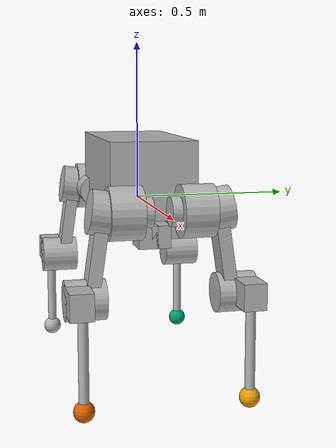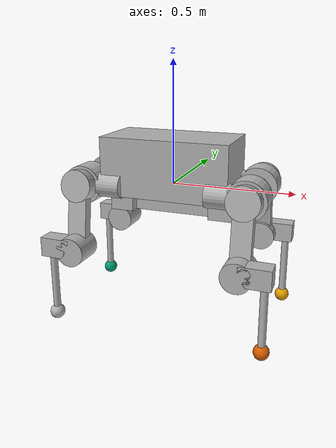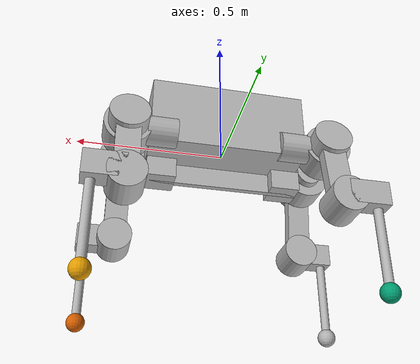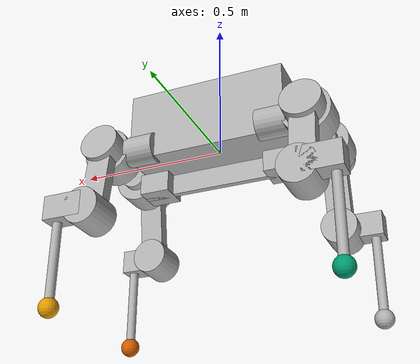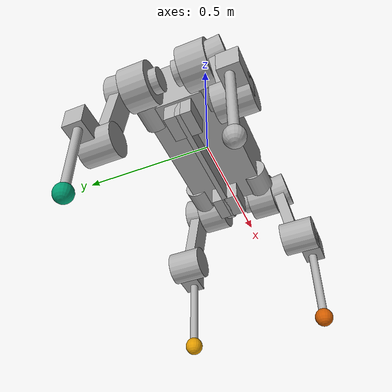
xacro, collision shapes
<?xml version="1.0" encoding="utf-8"?>
<!--   Copyright 2019 ANYbotics, https://www.anybotics.com                               -->
<!-- This file contains the description of the ANYmal B robot. -->
<robot name="anymal" xmlns:xacro="http://www.ros.org/wiki/xacro">

    <!-- This argument allows us to load joint sensors that measure the internal wrenches -->
    <xacro:arg name="load_force_sensors" default="false"/>
    <xacro:arg name="period"             default="0.004"/>
    <xacro:arg name="floating_base_link" default="true"/>
    <xacro:arg name="robot_model"        default="anymal"/>
    <xacro:arg name="robot_name"         default=""/>
    <xacro:arg name="base_name"          default="base_link"/>

    <!-- load generic materials -->
    <xacro:include filename="$(find wolf_description_utils)/urdfs/materials.xacro"/>

    <!-- generic simulator_gazebo plugins for starting mechanism control, ros time -->
    <xacro:include filename="$(find wolf_description_utils)/urdfs/gazebo.urdf.xacro"/>

    <!-- legs transmission and gazebo plugins -->
    <xacro:include filename="$(find wolf_description_utils)/urdfs/leg.transmission.xacro"/>
    <xacro:include filename="$(find wolf_description_utils)/urdfs/leg.gazebo.xacro"/>

    <!-- Material for the visual primitives -->
    <material name="anymal_material">
        <color rgba="0.7 0.7 0.7 1.0"/>
    </material>

    <!-- Base link -->
    <link name="base_link">
        <visual>
            <origin rpy="0 0 0" xyz="0 0 0"/>
            <geometry>
                <mesh filename="package://anymal_description/meshes/anymal_base.dae" scale="0.001 0.001     0.001"/>
            </geometry>
            <material name="anymal_material"/>
        </visual>
        <collision>
            <!-- Main Body -->
            <origin rpy="0 0 0" xyz="0 0 0.08"/>
            <geometry>
                <box size="0.531 0.27 0.24"/>
            </geometry>
        </collision>
        <collision>
            <!-- HAA actuators -->
            <origin rpy="0 1.57079632679 0" xyz="0.227 0.116 0"/>
            <geometry>
                <cylinder length="0.1" radius="0.05"/>
            </geometry>
        </collision>
        <collision>
            <origin rpy="0 1.57079632679 0" xyz="0.227 -0.116 0"/>
            <geometry>
                <cylinder length="0.1" radius="0.05"/>
            </geometry>
        </collision>
        <collision>
            <origin rpy="0 1.57079632679 0" xyz="-0.227 0.116 0"/>
            <geometry>
                <cylinder length="0.1" radius="0.05"/>
            </geometry>
        </collision>
        <collision>
            <origin rpy="0 1.57079632679 0" xyz="-0.227 -0.116 0"/>
            <geometry>
                <cylinder length="0.1" radius="0.05"/>
            </geometry>
        </collision>
        <collision>
            <!-- Belly plate front bump -->
            <origin rpy="0 0 0" xyz="0.2155 0.0 -0.09"/>
            <geometry>
                <box size="0.1 0.1 0.07"/>
            </geometry>
        </collision>
        <collision>
            <!-- Belly plate hind bump-->
            <origin rpy="0 0 0" xyz="-0.2155 0.0 -0.09"/>
            <geometry>
                <box size="0.1 0.1 0.07"/>
            </geometry>
        </collision>
        <collision>
            <!-- Belly plate middle bump-->
            <origin rpy="0 0 0" xyz="0 0 -0.09"/>
            <geometry>
                <box size="0.531 0.02 0.07"/>
            </geometry>
        </collision>
    </link>

    <!-- Floating-base Joint -->
    <xacro:if value="$(arg floating_base_link)">
	    <link name="world"/>
	    <joint name="floating_base_joint" type="floating">
	      <origin rpy="0 0 0" xyz="0 0 0"/>
	      <parent link="world"/>
	      <child link="base_link"/>
	    </joint>
    </xacro:if>
    <joint name="floating_base" type="fixed">
      <origin rpy="0 0 0" xyz="0 0 0"/>
      <parent link="base_link"/>
      <child link="trunk"/>
    </joint>
    <link name="trunk"/>

    <!-- Fixed joint to add dummy inertia link -->
    <joint name="base_to_base_inertia" type="fixed">
        <parent link="trunk"/>
        <child link="base_inertia"/>
        <origin rpy="0 0 0" xyz="0 0 0"/>
    </joint>
    <!-- Dummy inertia link, because KDL cannot have inertia on the base link -->
    <link name="base_inertia">
        <inertial>
            <origin rpy="0 0 0" xyz="-0.001960558279 -0.001413217745 0.050207125344"/>
            <mass value="40.793507758"/>
            <inertia ixx="0.217391101503" ixy="-0.00132873239126" ixz="-0.00228200226173" iyy="0.639432546734" iyz="-0.00138078263145" izz="0.62414077654"/>
        </inertial>
    </link>
    <link name="lf_hip">
        <visual>
            <origin rpy="0 0 0.0" xyz="0 0 0"/>
            <geometry>
                <mesh filename="package://anymal_description/meshes/anymal_hip_l.dae" scale="0.001 0.001     0.001"/>
            </geometry>
            <material name="anymal_material"/>
        </visual>
        <collision>
            <!-- Protector -->
            <origin rpy="1.57079632679 0 0" xyz="0.0635 -0.009 0.0"/>
            <geometry>
                <cylinder length="0.1" radius="0.08"/>
            </geometry>
        </collision>
        <collision>
            <!-- Heatfins -->
            <origin rpy="1.57079632679 0 0" xyz="0.0635 -0.074 0.0"/>
            <geometry>
                <cylinder length="0.03" radius="0.045"/>
            </geometry>
        </collision>
        <inertial>
            <origin rpy="0 0 0" xyz="0.064516258147 -0.003787101702 -0.000152184388"/>
            <mass value="1.42462064"/>
            <inertia ixx="0.00243023349564" ixy="-1.53023971e-05" ixz="-2.1819095354e-05" iyy="0.00230257239103" iyz="2.6473021273e-05" izz="0.0019806759227"/>
        </inertial>
    </link>
    <!-- Hip joint -->
    <joint name="lf_haa_joint" type="revolute">
        <parent link="trunk"/>
        <child link="lf_hip"/>
        <origin xyz="0.277 0.116 0.0"/>
        <axis xyz="1 0 0"/>
        <limit command_effort="40" current="10" effort="80" gear_velocity="10" lower="-9.42" upper="9.42" velocity="15"/>
        <dynamics damping="0.0" friction="0.0"/>
    </joint>
    <link name="lf_upperleg">
        <visual>
            <origin rpy="0 0 0.0" xyz="0 0 0"/>
            <geometry>
                <mesh filename="package://anymal_description/meshes/anymal_thigh_l.dae" scale="0.001 0.001     0.001"/>
            </geometry>
            <material name="anymal_material"/>
        </visual>
        <collision>
            <!-- upperleg with heat fins -->
            <origin rpy="0.145 0 0" xyz="0 0.035 -0.125"/>
            <geometry>
                <box size="0.08 0.04 0.25"/>
            </geometry>
        </collision>
        <collision>
            <!-- KFE actuator -->
            <origin rpy="1.57079632679 0 0" xyz="0.0 0.069 -0.25"/>
            <geometry>
                <cylinder length="0.12" radius="0.06"/>
            </geometry>
        </collision>
        <collision>
            <!-- upper protector -->
            <origin rpy="1.71579632679 0 0" xyz="0 -0.005 0"/>
            <geometry>
                <cylinder length="0.12" radius="0.066"/>
            </geometry>
        </collision>
        <inertial>
            <origin rpy="0 0 0" xyz="-0.003897968082 0.054226618537 -0.214583373795"/>
            <mass value="2.3"/>
            <inertia ixx="0.0120367944369" ixy="6.762065206e-05" ixz="0.000287806340448" iyy="0.0120643637939" iyz="-0.00140610131218" izz="0.00249422574881"/>
        </inertial>
    </link>
    <!-- upperleg joint -->
    <joint name="lf_hfe_joint" type="revolute">
        <parent link="lf_hip"/>
        <child link="lf_upperleg"/>
        <origin xyz="0.0635                    0.041                    0.0"/>
        <axis xyz="0 1 0"/>
        <limit command_effort="40" current="10" effort="80" gear_velocity="10" lower="-9.42" upper="9.42" velocity="15.0"/>
        <dynamics damping="0.0" friction="0.0"/>
    </joint>
    <link name="lf_lowerleg">
        <visual>
            <origin rpy="0 0 0.0" xyz="0 0 0"/>
            <geometry>
                <mesh filename="package://anymal_description/meshes/anymal_shank_l.dae" scale="0.001 0.001     0.001"/>
            </geometry>
            <material name="anymal_material"/>
        </visual>
        <collision>
            <origin rpy="0 1.57079632679 0" xyz="0.065 -0.015 0.01"/>
            <geometry>
                <box size="0.08 0.07 0.13"/>
            </geometry>
        </collision>
        <inertial>
            <origin rpy="0 0 0" xyz="0.030816858139 -0.004617229294 0.000893125713"/>
            <mass value="0.207204302"/>
            <inertia ixx="0.0002104880248" ixy="-5.6750980345e-05" ixz="1.0127699391e-05" iyy="0.000676270210023" iyz="-8.22869024e-07" izz="0.000545032674924"/>
        </inertial>
    </link>
    <!-- lowerleg joint -->
    <joint name="lf_kfe_joint" type="revolute">
        <parent link="lf_upperleg"/>
        <child link="lf_lowerleg"/>
        <origin xyz="0.0 0.109 -0.25"/>
        <axis xyz="0 1 0"/>
        <limit command_effort="40" current="10" effort="80" gear_velocity="10" lower="-9.42" upper="9.42" velocity="15.0"/>
        <dynamics damping="0.0" friction="0.0"/>
    </joint>
    <!-- lowerleg to Adapter joint -->
    <joint name="lf_lowerleg_to_adapter" type="fixed">
        <parent link="lf_lowerleg"/>
        <child link="lf_adapter"/>
        <origin rpy="0.0 0.0 0.0" xyz="0.1 -0.02 0.0"/>
    </joint>
    <!-- Adapter link -->
    <link name="lf_adapter">
        <visual>
            <origin rpy="0 0 0.0" xyz="0 0 0.032"/>
            <geometry>
                <mesh filename="package://anymal_description/meshes/anymal_foot.dae" scale="0.001 0.001     0.001"/>
            </geometry>
            <material name="anymal_material"/>
        </visual>
        <collision>
            <origin rpy="0 0 0" xyz="0 0 -0.160625"/>
            <geometry>
                <cylinder length="0.32125" radius="0.015"/>
            </geometry>
            <material name="anymal_material"/>
        </collision>
        <inertial>
            <origin rpy="0 0 0" xyz="-8.66e-10 -1.472e-09 -0.244345749188"/>
            <mass value="0.140170767"/>
            <inertia ixx="0.00159938741862" ixy="-9.32e-13" ixz="1.039e-11" iyy="0.00159938741932" iyz="1.7563e-11" izz="5.4423177329e-05"/>
        </inertial>
    </link>
    <!-- Adapter to Foot joint -->
    <joint name="lf_adapter_to_foot" type="fixed">
        <parent link="lf_adapter"/>
        <child link="lf_foot"/>
        <origin rpy="0.0 0.0 0.0" xyz="0.0 0.0 -0.32125"/>
    </joint>
    <!-- Foot link -->
    <link name="lf_foot">
        <collision>
            <origin xyz="0 0 0.02325"/>
            <geometry>
                <sphere radius="0.031"/>
            </geometry>
        </collision>
    </link>
    <link name="rf_hip">
        <visual>
            <origin rpy="0 0 0.0" xyz="0 0 0"/>
            <geometry>
                <mesh filename="package://anymal_description/meshes/anymal_hip_r.dae" scale="0.001 0.001     0.001"/>
            </geometry>
            <material name="anymal_material"/>
        </visual>
        <collision>
            <!-- Protector -->
            <origin rpy="1.57079632679 0 0" xyz="0.0635 0.009 0.0"/>
            <geometry>
                <cylinder length="0.1" radius="0.08"/>
            </geometry>
        </collision>
        <collision>
            <!-- Heatfins -->
            <origin rpy="1.57079632679 0 0" xyz="0.0635 0.074 0.0"/>
            <geometry>
                <cylinder length="0.03" radius="0.045"/>
            </geometry>
        </collision>
        <inertial>
            <origin rpy="0 0 0" xyz="0.064516258147 0.003787101702 -0.000152184388"/>
            <mass value="1.42462064"/>
            <inertia ixx="0.00243023349564" ixy="1.53023971e-05" ixz="-2.1819095354e-05" iyy="0.00230257239103" iyz="-2.6473021273e-05" izz="0.0019806759227"/>
        </inertial>
    </link>
    <!-- Hip joint -->
    <joint name="rf_haa_joint" type="revolute">
        <parent link="trunk"/>
        <child link="rf_hip"/>
        <origin xyz="0.277 -0.116 0.0"/>
        <axis xyz="1 0 0"/>
        <limit command_effort="40" current="10" effort="80" gear_velocity="10" lower="-9.42" upper="9.42" velocity="15"/>
        <dynamics damping="0.0" friction="0.0"/>
    </joint>
    <link name="rf_upperleg">
        <visual>
            <origin rpy="0 0 0.0" xyz="0 0 0"/>
            <geometry>
                <mesh filename="package://anymal_description/meshes/anymal_thigh_r.dae" scale="0.001 0.001     0.001"/>
            </geometry>
            <material name="anymal_material"/>
        </visual>
        <collision>
            <!-- upperleg with heat fins -->
            <origin rpy="-0.145 0 0" xyz="0 -0.035 -0.125"/>
            <geometry>
                <box size="0.08 0.04 0.25"/>
            </geometry>
        </collision>
        <collision>
            <!-- KFE actuator -->
            <origin rpy="1.57079632679 0 0" xyz="0.0 -0.069 -0.25"/>
            <geometry>
                <cylinder length="0.12" radius="0.06"/>
            </geometry>
        </collision>
        <collision>
            <!-- upper protector -->
            <origin rpy="-1.71579632679 0 0" xyz="0 0.005 0"/>
            <geometry>
                <cylinder length="0.12" radius="0.066"/>
            </geometry>
        </collision>
        <inertial>
            <origin rpy="0 0 0" xyz="-0.003897968082 -0.054226618537 -0.214583373795"/>
            <mass value="2.3"/>
            <inertia ixx="0.0120367944369" ixy="-6.762065206e-05" ixz="0.000287806340448" iyy="0.0120643637939" iyz="0.00140610131218" izz="0.00249422574881"/>
        </inertial>
    </link>
    <!-- upperleg joint -->
    <joint name="rf_hfe_joint" type="revolute">
        <parent link="rf_hip"/>
        <child link="rf_upperleg"/>
        <origin xyz="0.0635                    -0.041                    0.0"/>
        <axis xyz="0 1 0"/>
        <limit command_effort="40" current="10" effort="80" gear_velocity="10" lower="-9.42" upper="9.42" velocity="15.0"/>
        <dynamics damping="0.0" friction="0.0"/>
    </joint>
    <link name="rf_lowerleg">
        <visual>
            <origin rpy="0 0 0.0" xyz="0 0 0"/>
            <geometry>
                <mesh filename="package://anymal_description/meshes/anymal_shank_r.dae" scale="0.001 0.001     0.001"/>
            </geometry>
            <material name="anymal_material"/>
        </visual>
        <collision>
            <origin rpy="0 1.57079632679 0" xyz="0.065 0.015 0.01"/>
            <geometry>
                <box size="0.08 0.07 0.13"/>
            </geometry>
        </collision>
        <inertial>
            <origin rpy="0 0 0" xyz="0.030816858139 0.004617229294 0.000893125713"/>
            <mass value="0.207204302"/>
            <inertia ixx="0.0002104880248" ixy="5.6750980345e-05" ixz="1.0127699391e-05" iyy="0.000676270210023" iyz="8.22869024e-07" izz="0.000545032674924"/>
        </inertial>
    </link>
    <!-- lowerleg joint -->
    <joint name="rf_kfe_joint" type="revolute">
        <parent link="rf_upperleg"/>
        <child link="rf_lowerleg"/>
        <origin xyz="0.0 -0.109 -0.25"/>
        <axis xyz="0 1 0"/>
        <limit command_effort="40" current="10" effort="80" gear_velocity="10" lower="-9.42" upper="9.42" velocity="15.0"/>
        <dynamics damping="0.0" friction="0.0"/>
    </joint>
    <!-- lowerleg to Adapter joint -->
    <joint name="rf_lowerleg_to_adapter" type="fixed">
        <parent link="rf_lowerleg"/>
        <child link="rf_adapter"/>
        <origin rpy="-0.0 0.0 -0.0" xyz="0.1 0.02 0.0"/>
    </joint>
    <!-- Adapter link -->
    <link name="rf_adapter">
        <visual>
            <origin rpy="0 0 0.0" xyz="0 0 0.032"/>
            <geometry>
                <mesh filename="package://anymal_description/meshes/anymal_foot.dae" scale="0.001 0.001     0.001"/>
            </geometry>
            <material name="anymal_material"/>
        </visual>
        <collision>
            <origin rpy="0 0 0" xyz="0 0 -0.160625"/>
            <geometry>
                <cylinder length="0.32125" radius="0.015"/>
            </geometry>
            <material name="anymal_material"/>
        </collision>
        <inertial>
            <origin rpy="0 0 0" xyz="-8.66e-10 -1.472e-09 -0.244345749188"/>
            <mass value="0.140170767"/>
            <inertia ixx="0.00159938741862" ixy="-9.32e-13" ixz="1.039e-11" iyy="0.00159938741932" iyz="1.7563e-11" izz="5.4423177329e-05"/>
        </inertial>
    </link>
    <!-- Adapter to Foot joint -->
    <joint name="rf_adapter_to_foot" type="fixed">
        <parent link="rf_adapter"/>
        <child link="rf_foot"/>
        <origin rpy="-0.0 0.0 -0.0" xyz="0.0 -0.0 -0.32125"/>
    </joint>
    <!-- Foot link -->
    <link name="rf_foot">
        <collision>
            <origin xyz="0 0 0.02325"/>
            <geometry>
                <sphere radius="0.031"/>
            </geometry>
        </collision>
    </link>
    <link name="lh_hip">
        <visual>
            <origin rpy="0 0 -3.14159265359" xyz="0 0 0"/>
            <geometry>
                <mesh filename="package://anymal_description/meshes/anymal_hip_r.dae" scale="0.001 0.001     0.001"/>
            </geometry>
            <material name="anymal_material"/>
        </visual>
        <collision>
            <!-- Protector -->
            <origin rpy="-1.57079632679 0 0" xyz="-0.0635 -0.009 0.0"/>
            <geometry>
                <cylinder length="0.1" radius="0.08"/>
            </geometry>
        </collision>
        <collision>
            <!-- Heatfins -->
            <origin rpy="-1.57079632679 0 0" xyz="-0.0635 -0.074 0.0"/>
            <geometry>
                <cylinder length="0.03" radius="0.045"/>
            </geometry>
        </collision>
        <inertial>
            <origin rpy="0 0 0" xyz="-0.064516258147 -0.003787101702 -0.000152184388"/>
            <mass value="1.42462064"/>
            <inertia ixx="0.00243023349564" ixy="1.53023971e-05" ixz="2.1819095354e-05" iyy="0.00230257239103" iyz="2.6473021273e-05" izz="0.0019806759227"/>
        </inertial>
    </link>
    <!-- Hip joint -->
    <joint name="lh_haa_joint" type="revolute">
        <parent link="trunk"/>
        <child link="lh_hip"/>
        <origin xyz="-0.277 0.116 0.0"/>
        <axis xyz="1 0 0"/>
        <limit command_effort="40" current="10" effort="80" gear_velocity="10" lower="-9.42" upper="9.42" velocity="15"/>
        <dynamics damping="0.0" friction="0.0"/>
    </joint>
    <link name="lh_upperleg">
        <visual>
            <origin rpy="0 0 -3.14159265359" xyz="0 0 0"/>
            <geometry>
                <mesh filename="package://anymal_description/meshes/anymal_thigh_r.dae" scale="0.001 0.001     0.001"/>
            </geometry>
            <material name="anymal_material"/>
        </visual>
        <collision>
            <!-- upperleg with heat fins -->
            <origin rpy="0.145 0 0" xyz="0 0.035 -0.125"/>
            <geometry>
                <box size="0.08 0.04 0.25"/>
            </geometry>
        </collision>
        <collision>
            <!-- KFE actuator -->
            <origin rpy="1.57079632679 0 0" xyz="0.0 0.069 -0.25"/>
            <geometry>
                <cylinder length="0.12" radius="0.06"/>
            </geometry>
        </collision>
        <collision>
            <!-- upper protector -->
            <origin rpy="1.71579632679 0 0" xyz="0 -0.005 0"/>
            <geometry>
                <cylinder length="0.12" radius="0.066"/>
            </geometry>
        </collision>
        <inertial>
            <origin rpy="0 0 0" xyz="0.003897968082 0.054226618537 -0.214583373795"/>
            <mass value="2.3"/>
            <inertia ixx="0.0120367944369" ixy="-6.762065206e-05" ixz="-0.000287806340448" iyy="0.0120643637939" iyz="-0.00140610131218" izz="0.00249422574881"/>
        </inertial>
    </link>
    <!-- upperleg joint -->
    <joint name="lh_hfe_joint" type="revolute">
        <parent link="lh_hip"/>
        <child link="lh_upperleg"/>
        <origin xyz="-0.0635                    0.041                    0.0"/>
        <axis xyz="0 1 0"/>
        <limit command_effort="40" current="10" effort="80" gear_velocity="10" lower="-9.42" upper="9.42" velocity="15.0"/>
        <dynamics damping="0.0" friction="0.0"/>
    </joint>
    <link name="lh_lowerleg">
        <visual>
            <origin rpy="0 0 -3.14159265359" xyz="0 0 0"/>
            <geometry>
                <mesh filename="package://anymal_description/meshes/anymal_shank_r.dae" scale="0.001 0.001     0.001"/>
            </geometry>
            <material name="anymal_material"/>
        </visual>
        <collision>
            <origin rpy="0 1.57079632679 0" xyz="-0.065 -0.015 0.01"/>
            <geometry>
                <box size="0.08 0.07 0.13"/>
            </geometry>
        </collision>
        <inertial>
            <origin rpy="0 0 0" xyz="-0.030816858139 -0.004617229294 0.000893125713"/>
            <mass value="0.207204302"/>
            <inertia ixx="0.0002104880248" ixy="5.6750980345e-05" ixz="-1.0127699391e-05" iyy="0.000676270210023" iyz="-8.22869024e-07" izz="0.000545032674924"/>
        </inertial>
    </link>
    <!-- lowerleg joint -->
    <joint name="lh_kfe_joint" type="revolute">
        <parent link="lh_upperleg"/>
        <child link="lh_lowerleg"/>
        <origin xyz="-0.0 0.109 -0.25"/>
        <axis xyz="0 1 0"/>
        <limit command_effort="40" current="10" effort="80" gear_velocity="10" lower="-9.42" upper="9.42" velocity="15.0"/>
        <dynamics damping="0.0" friction="0.0"/>
    </joint>
    <!-- lowerleg to Adapter joint -->
    <joint name="lh_lowerleg_to_adapter" type="fixed">
        <parent link="lh_lowerleg"/>
        <child link="lh_adapter"/>
        <origin rpy="0.0 -0.0 -0.0" xyz="-0.1 -0.02 0.0"/>
    </joint>
    <!-- Adapter link -->
    <link name="lh_adapter">
        <visual>
            <origin rpy="0 0 -3.14159265359" xyz="0 0 0.032"/>
            <geometry>
                <mesh filename="package://anymal_description/meshes/anymal_foot.dae" scale="0.001 0.001     0.001"/>
            </geometry>
            <material name="anymal_material"/>
        </visual>
        <collision>
            <origin rpy="0 0 0" xyz="0 0 -0.160625"/>
            <geometry>
                <cylinder length="0.32125" radius="0.015"/>
            </geometry>
            <material name="anymal_material"/>
        </collision>
        <inertial>
            <origin rpy="0 0 0" xyz="-8.66e-10 -1.472e-09 -0.244345749188"/>
            <mass value="0.140170767"/>
            <inertia ixx="0.00159938741862" ixy="-9.32e-13" ixz="1.039e-11" iyy="0.00159938741932" iyz="1.7563e-11" izz="5.4423177329e-05"/>
        </inertial>
    </link>
    <!-- Adapter to Foot joint -->
    <joint name="lh_adapter_to_foot" type="fixed">
        <parent link="lh_adapter"/>
        <child link="lh_foot"/>
        <origin rpy="0.0 -0.0 -0.0" xyz="-0.0 0.0 -0.32125"/>
    </joint>
    <!-- Foot link -->
    <link name="lh_foot">
        <collision>
            <origin xyz="0 0 0.02325"/>
            <geometry>
                <sphere radius="0.031"/>
            </geometry>
        </collision>
    </link>
    <link name="rh_hip">
        <visual>
            <origin rpy="0 0 -3.14159265359" xyz="0 0 0"/>
            <geometry>
                <mesh filename="package://anymal_description/meshes/anymal_hip_l.dae" scale="0.001 0.001     0.001"/>
            </geometry>
            <material name="anymal_material"/>
        </visual>
        <collision>
            <!-- Protector -->
            <origin rpy="-1.57079632679 0 0" xyz="-0.0635 0.009 0.0"/>
            <geometry>
                <cylinder length="0.1" radius="0.08"/>
            </geometry>
        </collision>
        <collision>
            <!-- Heatfins -->
            <origin rpy="-1.57079632679 0 0" xyz="-0.0635 0.074 0.0"/>
            <geometry>
                <cylinder length="0.03" radius="0.045"/>
            </geometry>
        </collision>
        <inertial>
            <origin rpy="0 0 0" xyz="-0.064516258147 0.003787101702 -0.000152184388"/>
            <mass value="1.42462064"/>
            <inertia ixx="0.00243023349564" ixy="-1.53023971e-05" ixz="2.1819095354e-05" iyy="0.00230257239103" iyz="-2.6473021273e-05" izz="0.0019806759227"/>
        </inertial>
    </link>
    <!-- Hip joint -->
    <joint name="rh_haa_joint" type="revolute">
        <parent link="trunk"/>
        <child link="rh_hip"/>
        <origin xyz="-0.277 -0.116 0.0"/>
        <axis xyz="1 0 0"/>
        <limit command_effort="40" current="10" effort="80" gear_velocity="10" lower="-9.42" upper="9.42" velocity="15"/>
        <dynamics damping="0.0" friction="0.0"/>
    </joint>
    <link name="rh_upperleg">
        <visual>
            <origin rpy="0 0 -3.14159265359" xyz="0 0 0"/>
            <geometry>
                <mesh filename="package://anymal_description/meshes/anymal_thigh_l.dae" scale="0.001 0.001     0.001"/>
            </geometry>
            <material name="anymal_material"/>
        </visual>
        <collision>
            <!-- upperleg with heat fins -->
            <origin rpy="-0.145 0 0" xyz="0 -0.035 -0.125"/>
            <geometry>
                <box size="0.08 0.04 0.25"/>
            </geometry>
        </collision>
        <collision>
            <!-- KFE actuator -->
            <origin rpy="1.57079632679 0 0" xyz="0.0 -0.069 -0.25"/>
            <geometry>
                <cylinder length="0.12" radius="0.06"/>
            </geometry>
        </collision>
        <collision>
            <!-- upper protector -->
            <origin rpy="-1.71579632679 0 0" xyz="0 0.005 0"/>
            <geometry>
                <cylinder length="0.12" radius="0.066"/>
            </geometry>
        </collision>
        <inertial>
            <origin rpy="0 0 0" xyz="0.003897968082 -0.054226618537 -0.214583373795"/>
            <mass value="2.3"/>
            <inertia ixx="0.0120367944369" ixy="6.762065206e-05" ixz="-0.000287806340448" iyy="0.0120643637939" iyz="0.00140610131218" izz="0.00249422574881"/>
        </inertial>
    </link>
    <!-- upperleg joint -->
    <joint name="rh_hfe_joint" type="revolute">
        <parent link="rh_hip"/>
        <child link="rh_upperleg"/>
        <origin xyz="-0.0635                    -0.041                    0.0"/>
        <axis xyz="0 1 0"/>
        <limit command_effort="40" current="10" effort="80" gear_velocity="10" lower="-9.42" upper="9.42" velocity="15.0"/>
        <dynamics damping="0.0" friction="0.0"/>
    </joint>
    <link name="rh_lowerleg">
        <visual>
            <origin rpy="0 0 -3.14159265359" xyz="0 0 0"/>
            <geometry>
                <mesh filename="package://anymal_description/meshes/anymal_shank_l.dae" scale="0.001 0.001     0.001"/>
            </geometry>
            <material name="anymal_material"/>
        </visual>
        <collision>
            <origin rpy="0 1.57079632679 0" xyz="-0.065 0.015 0.01"/>
            <geometry>
                <box size="0.08 0.07 0.13"/>
            </geometry>
        </collision>
        <inertial>
            <origin rpy="0 0 0" xyz="-0.030816858139 0.004617229294 0.000893125713"/>
            <mass value="0.207204302"/>
            <inertia ixx="0.0002104880248" ixy="-5.6750980345e-05" ixz="-1.0127699391e-05" iyy="0.000676270210023" iyz="8.22869024e-07" izz="0.000545032674924"/>
        </inertial>
    </link>
    <!-- lowerleg joint -->
    <joint name="rh_kfe_joint" type="revolute">
        <parent link="rh_upperleg"/>
        <child link="rh_lowerleg"/>
        <origin xyz="-0.0 -0.109 -0.25"/>
        <axis xyz="0 1 0"/>
        <limit command_effort="40" current="10" effort="80" gear_velocity="10" lower="-9.42" upper="9.42" velocity="15.0"/>
        <dynamics damping="0.0" friction="0.0"/>
    </joint>
    <!-- lowerleg to Adapter joint -->
    <joint name="rh_lowerleg_to_adapter" type="fixed">
        <parent link="rh_lowerleg"/>
        <child link="rh_adapter"/>
        <origin rpy="-0.0 -0.0 0.0" xyz="-0.1 0.02 0.0"/>
    </joint>
    <!-- Adapter link -->
    <link name="rh_adapter">
        <visual>
            <origin rpy="0 0 -3.14159265359" xyz="0 0 0.032"/>
            <geometry>
                <mesh filename="package://anymal_description/meshes/anymal_foot.dae" scale="0.001 0.001     0.001"/>
            </geometry>
            <material name="anymal_material"/>
        </visual>
        <collision>
            <origin rpy="0 0 0" xyz="0 0 -0.160625"/>
            <geometry>
                <cylinder length="0.32125" radius="0.015"/>
            </geometry>
            <material name="anymal_material"/>
        </collision>
        <inertial>
            <origin rpy="0 0 0" xyz="-8.66e-10 -1.472e-09 -0.244345749188"/>
            <mass value="0.140170767"/>
            <inertia ixx="0.00159938741862" ixy="-9.32e-13" ixz="1.039e-11" iyy="0.00159938741932" iyz="1.7563e-11" izz="5.4423177329e-05"/>
        </inertial>
    </link>
    <!-- Adapter to Foot joint -->
    <joint name="rh_adapter_to_foot" type="fixed">
        <parent link="rh_adapter"/>
        <child link="rh_foot"/>
        <origin rpy="-0.0 -0.0 0.0" xyz="-0.0 -0.0 -0.32125"/>
    </joint>
    <!-- Foot link -->
    <link name="rh_foot">
        <collision>
            <origin xyz="0 0 0.02325"/>
            <geometry>
                <sphere radius="0.031"/>
            </geometry>
        </collision>
    </link>

    <!-- Extensions -->
    <xacro:leg_transmission prefix="rf"/>
    <xacro:leg_gazebo prefix="rf" robot_name="$(arg robot_name)" load_force_sensors="$(arg load_force_sensors)"/>
    <xacro:leg_transmission prefix="lf"/>
    <xacro:leg_gazebo prefix="lf" robot_name="$(arg robot_name)" load_force_sensors="$(arg load_force_sensors)"/>
    <xacro:leg_transmission prefix="rh"/>
    <xacro:leg_gazebo prefix="rh" robot_name="$(arg robot_name)" load_force_sensors="$(arg load_force_sensors)"/>
    <xacro:leg_transmission prefix="lh"/>
    <xacro:leg_gazebo prefix="lh" robot_name="$(arg robot_name)" load_force_sensors="$(arg load_force_sensors)"/>

</robot>
